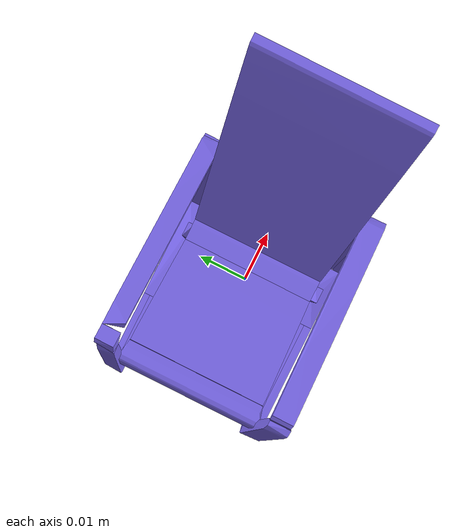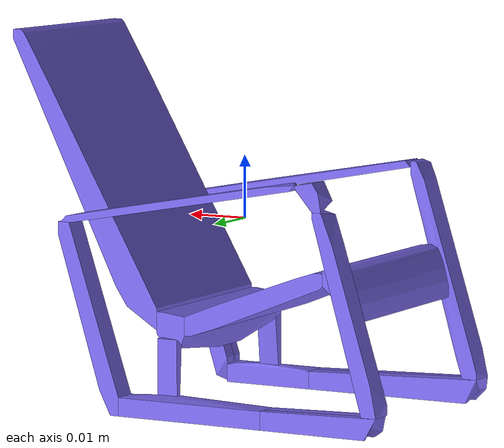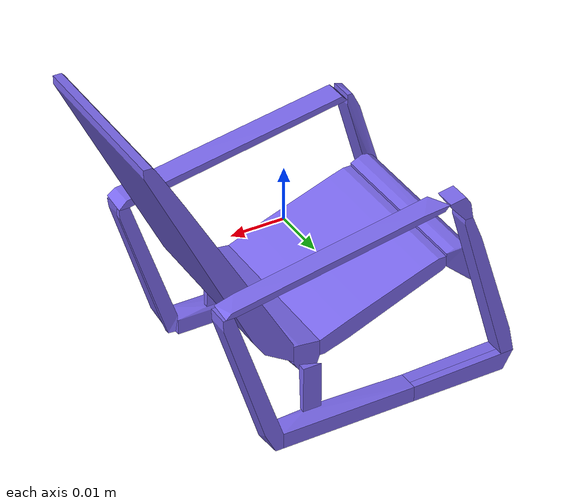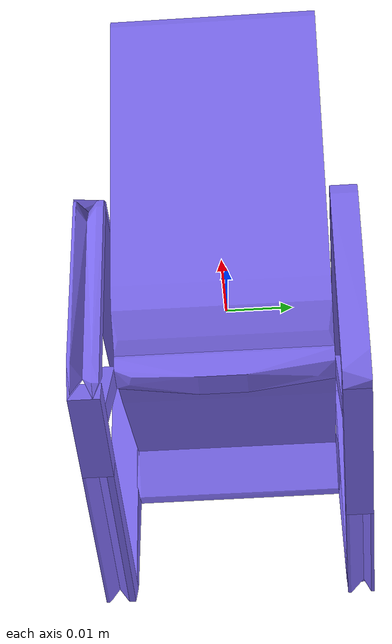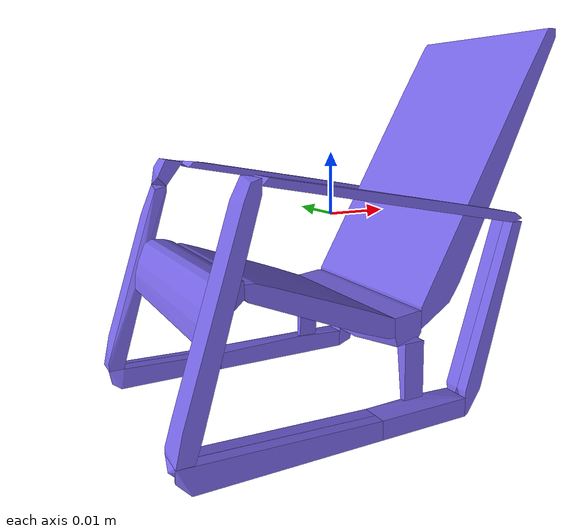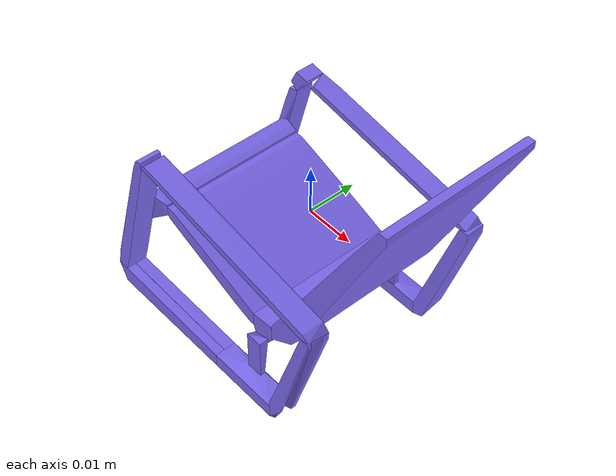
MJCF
<mujoco model="shapenetsem10">
  <asset>
    <mesh file="meshes/shapenetsem10/shapenetsem10_0.stl" name="shapenetsem10_0" scale="1 1 1"/>
    <mesh file="meshes/shapenetsem10/shapenetsem10_1.stl" name="shapenetsem10_1" scale="1 1 1"/>
    <mesh file="meshes/shapenetsem10/shapenetsem10_2.stl" name="shapenetsem10_2" scale="1 1 1"/>
    <mesh file="meshes/shapenetsem10/shapenetsem10_3.stl" name="shapenetsem10_3" scale="1 1 1"/>
    <mesh file="meshes/shapenetsem10/shapenetsem10_4.stl" name="shapenetsem10_4" scale="1 1 1"/>
    <mesh file="meshes/shapenetsem10/shapenetsem10_5.stl" name="shapenetsem10_5" scale="1 1 1"/>
    <mesh file="meshes/shapenetsem10/shapenetsem10_6.stl" name="shapenetsem10_6" scale="1 1 1"/>
    <mesh file="meshes/shapenetsem10/shapenetsem10_7.stl" name="shapenetsem10_7" scale="1 1 1"/>
    <mesh file="meshes/shapenetsem10/shapenetsem10_8.stl" name="shapenetsem10_8" scale="1 1 1"/>
    <mesh file="meshes/shapenetsem10/shapenetsem10_9.stl" name="shapenetsem10_9" scale="1 1 1"/>
    <mesh file="meshes/shapenetsem10/shapenetsem10_10.stl" name="shapenetsem10_10" scale="1 1 1"/>
    <mesh file="meshes/shapenetsem10/shapenetsem10_11.stl" name="shapenetsem10_11" scale="1 1 1"/>
    <mesh file="meshes/shapenetsem10/shapenetsem10_12.stl" name="shapenetsem10_12" scale="1 1 1"/>
    <mesh file="meshes/shapenetsem10/shapenetsem10_13.stl" name="shapenetsem10_13" scale="1 1 1"/>
    <mesh file="meshes/shapenetsem10/shapenetsem10_14.stl" name="shapenetsem10_14" scale="1 1 1"/>
    <mesh file="meshes/shapenetsem10/shapenetsem10_15.stl" name="shapenetsem10_15" scale="1 1 1"/>
    <mesh file="meshes/shapenetsem10/shapenetsem10_16.stl" name="shapenetsem10_16" scale="1 1 1"/>
    <mesh file="meshes/shapenetsem10/shapenetsem10_17.stl" name="shapenetsem10_17" scale="1 1 1"/>
    <mesh file="meshes/shapenetsem10/shapenetsem10_18.stl" name="shapenetsem10_18" scale="1 1 1"/>
    <mesh file="meshes/shapenetsem10/shapenetsem10_19.stl" name="shapenetsem10_19" scale="1 1 1"/>
    <texture file="../textures/texture9-1.png" type="2d" name="tex-sem10"/>
    <material name="sem10" reflectance="0.7" texrepeat="30 25" texture="tex-sem10" texuniform="true"/>
  </asset>
  <worldbody>
    <body>
      <body name="collision">
        <geom pos="0 0 0" mesh="shapenetsem10_0" type="mesh" solimp="0.998 0.998 0.001" solref="0.001 1" density="100" friction="0.95 0.3 0.1" rgba="0.48 0.41 0.93 1" group="1" condim="4"/>
        <geom pos="0 0 0" mesh="shapenetsem10_1" type="mesh" solimp="0.998 0.998 0.001" solref="0.001 1" density="100" friction="0.95 0.3 0.1" rgba="0.48 0.41 0.93 1" group="1" condim="4"/>
        <geom pos="0 0 0" mesh="shapenetsem10_2" type="mesh" solimp="0.998 0.998 0.001" solref="0.001 1" density="100" friction="0.95 0.3 0.1" rgba="0.48 0.41 0.93 1" group="1" condim="4"/>
        <geom pos="0 0 0" mesh="shapenetsem10_3" type="mesh" solimp="0.998 0.998 0.001" solref="0.001 1" density="100" friction="0.95 0.3 0.1" rgba="0.48 0.41 0.93 1" group="1" condim="4"/>
        <geom pos="0 0 0" mesh="shapenetsem10_4" type="mesh" solimp="0.998 0.998 0.001" solref="0.001 1" density="100" friction="0.95 0.3 0.1" rgba="0.48 0.41 0.93 1" group="1" condim="4"/>
        <geom pos="0 0 0" mesh="shapenetsem10_5" type="mesh" solimp="0.998 0.998 0.001" solref="0.001 1" density="100" friction="0.95 0.3 0.1" rgba="0.48 0.41 0.93 1" group="1" condim="4"/>
        <geom pos="0 0 0" mesh="shapenetsem10_6" type="mesh" solimp="0.998 0.998 0.001" solref="0.001 1" density="100" friction="0.95 0.3 0.1" rgba="0.48 0.41 0.93 1" group="1" condim="4"/>
        <geom pos="0 0 0" mesh="shapenetsem10_7" type="mesh" solimp="0.998 0.998 0.001" solref="0.001 1" density="100" friction="0.95 0.3 0.1" rgba="0.48 0.41 0.93 1" group="1" condim="4"/>
        <geom pos="0 0 0" mesh="shapenetsem10_8" type="mesh" solimp="0.998 0.998 0.001" solref="0.001 1" density="100" friction="0.95 0.3 0.1" rgba="0.48 0.41 0.93 1" group="1" condim="4"/>
        <geom pos="0 0 0" mesh="shapenetsem10_9" type="mesh" solimp="0.998 0.998 0.001" solref="0.001 1" density="100" friction="0.95 0.3 0.1" rgba="0.48 0.41 0.93 1" group="1" condim="4"/>
        <geom pos="0 0 0" mesh="shapenetsem10_10" type="mesh" solimp="0.998 0.998 0.001" solref="0.001 1" density="100" friction="0.95 0.3 0.1" rgba="0.48 0.41 0.93 1" group="1" condim="4"/>
        <geom pos="0 0 0" mesh="shapenetsem10_11" type="mesh" solimp="0.998 0.998 0.001" solref="0.001 1" density="100" friction="0.95 0.3 0.1" rgba="0.48 0.41 0.93 1" group="1" condim="4"/>
        <geom pos="0 0 0" mesh="shapenetsem10_12" type="mesh" solimp="0.998 0.998 0.001" solref="0.001 1" density="100" friction="0.95 0.3 0.1" rgba="0.48 0.41 0.93 1" group="1" condim="4"/>
        <geom pos="0 0 0" mesh="shapenetsem10_13" type="mesh" solimp="0.998 0.998 0.001" solref="0.001 1" density="100" friction="0.95 0.3 0.1" rgba="0.48 0.41 0.93 1" group="1" condim="4"/>
        <geom pos="0 0 0" mesh="shapenetsem10_14" type="mesh" solimp="0.998 0.998 0.001" solref="0.001 1" density="100" friction="0.95 0.3 0.1" rgba="0.48 0.41 0.93 1" group="1" condim="4"/>
        <geom pos="0 0 0" mesh="shapenetsem10_15" type="mesh" solimp="0.998 0.998 0.001" solref="0.001 1" density="100" friction="0.95 0.3 0.1" rgba="0.48 0.41 0.93 1" group="1" condim="4"/>
        <geom pos="0 0 0" mesh="shapenetsem10_16" type="mesh" solimp="0.998 0.998 0.001" solref="0.001 1" density="100" friction="0.95 0.3 0.1" rgba="0.48 0.41 0.93 1" group="1" condim="4"/>
        <geom pos="0 0 0" mesh="shapenetsem10_17" type="mesh" solimp="0.998 0.998 0.001" solref="0.001 1" density="100" friction="0.95 0.3 0.1" rgba="0.48 0.41 0.93 1" group="1" condim="4"/>
        <geom pos="0 0 0" mesh="shapenetsem10_18" type="mesh" solimp="0.998 0.998 0.001" solref="0.001 1" density="100" friction="0.95 0.3 0.1" rgba="0.48 0.41 0.93 1" group="1" condim="4"/>
        <geom pos="0 0 0" mesh="shapenetsem10_19" type="mesh" solimp="0.998 0.998 0.001" solref="0.001 1" density="100" friction="0.95 0.3 0.1" rgba="0.48 0.41 0.93 1" group="1" condim="4"/>
      </body>
      <body name="visual">
        <geom pos="0 0 0" mesh="shapenetsem10_0" type="mesh" rgba="0 1 0 1" conaffinity="0" contype="0" group="0" mass="0.0001"/>
        <geom pos="0 0 0" mesh="shapenetsem10_1" type="mesh" rgba="0 1 0 1" conaffinity="0" contype="0" group="0" mass="0.0001"/>
        <geom pos="0 0 0" mesh="shapenetsem10_2" type="mesh" rgba="0 1 0 1" conaffinity="0" contype="0" group="0" mass="0.0001"/>
        <geom pos="0 0 0" mesh="shapenetsem10_3" type="mesh" rgba="0 1 0 1" conaffinity="0" contype="0" group="0" mass="0.0001"/>
        <geom pos="0 0 0" mesh="shapenetsem10_4" type="mesh" rgba="0 1 0 1" conaffinity="0" contype="0" group="0" mass="0.0001"/>
        <geom pos="0 0 0" mesh="shapenetsem10_5" type="mesh" rgba="0 1 0 1" conaffinity="0" contype="0" group="0" mass="0.0001"/>
        <geom pos="0 0 0" mesh="shapenetsem10_6" type="mesh" rgba="0 1 0 1" conaffinity="0" contype="0" group="0" mass="0.0001"/>
        <geom pos="0 0 0" mesh="shapenetsem10_7" type="mesh" rgba="0 1 0 1" conaffinity="0" contype="0" group="0" mass="0.0001"/>
        <geom pos="0 0 0" mesh="shapenetsem10_8" type="mesh" rgba="0 1 0 1" conaffinity="0" contype="0" group="0" mass="0.0001"/>
        <geom pos="0 0 0" mesh="shapenetsem10_9" type="mesh" rgba="0 1 0 1" conaffinity="0" contype="0" group="0" mass="0.0001"/>
        <geom pos="0 0 0" mesh="shapenetsem10_10" type="mesh" rgba="0 1 0 1" conaffinity="0" contype="0" group="0" mass="0.0001"/>
        <geom pos="0 0 0" mesh="shapenetsem10_11" type="mesh" rgba="0 1 0 1" conaffinity="0" contype="0" group="0" mass="0.0001"/>
        <geom pos="0 0 0" mesh="shapenetsem10_12" type="mesh" rgba="0 1 0 1" conaffinity="0" contype="0" group="0" mass="0.0001"/>
        <geom pos="0 0 0" mesh="shapenetsem10_13" type="mesh" rgba="0 1 0 1" conaffinity="0" contype="0" group="0" mass="0.0001"/>
        <geom pos="0 0 0" mesh="shapenetsem10_14" type="mesh" rgba="0 1 0 1" conaffinity="0" contype="0" group="0" mass="0.0001"/>
        <geom pos="0 0 0" mesh="shapenetsem10_15" type="mesh" rgba="0 1 0 1" conaffinity="0" contype="0" group="0" mass="0.0001"/>
        <geom pos="0 0 0" mesh="shapenetsem10_16" type="mesh" rgba="0 1 0 1" conaffinity="0" contype="0" group="0" mass="0.0001"/>
        <geom pos="0 0 0" mesh="shapenetsem10_17" type="mesh" rgba="0 1 0 1" conaffinity="0" contype="0" group="0" mass="0.0001"/>
        <geom pos="0 0 0" mesh="shapenetsem10_18" type="mesh" rgba="0 1 0 1" conaffinity="0" contype="0" group="0" mass="0.0001"/>
        <geom pos="0 0 0" mesh="shapenetsem10_19" type="mesh" rgba="0 1 0 1" conaffinity="0" contype="0" group="0" mass="0.0001"/>
      </body>
      <site rgba="0 0 0 0" size="0.005" pos="0 0 -0.06" name="bottom_site"/>
      <site rgba="0 0 0 0" size="0.005" pos="0 0 0.04" name="top_site"/>
      <site rgba="0 0 0 0" size="0.005" pos="0.025 0.025 0" name="horizontal_radius_site"/>
    </body>
  </worldbody>
</mujoco>
